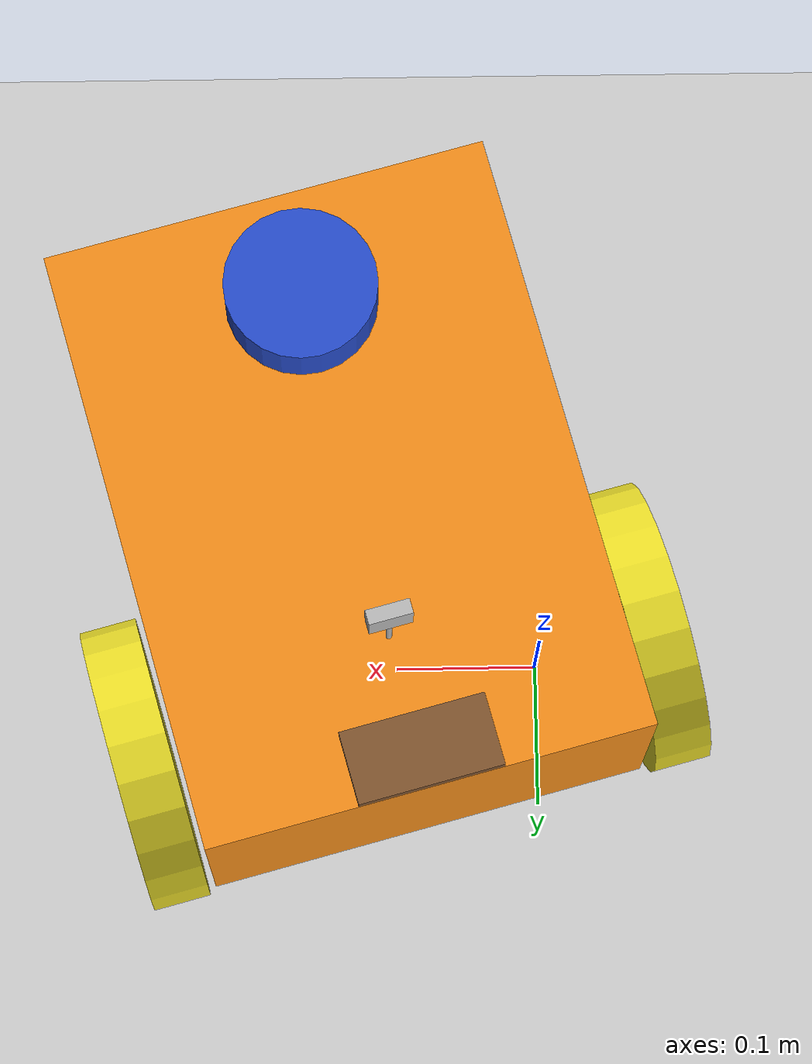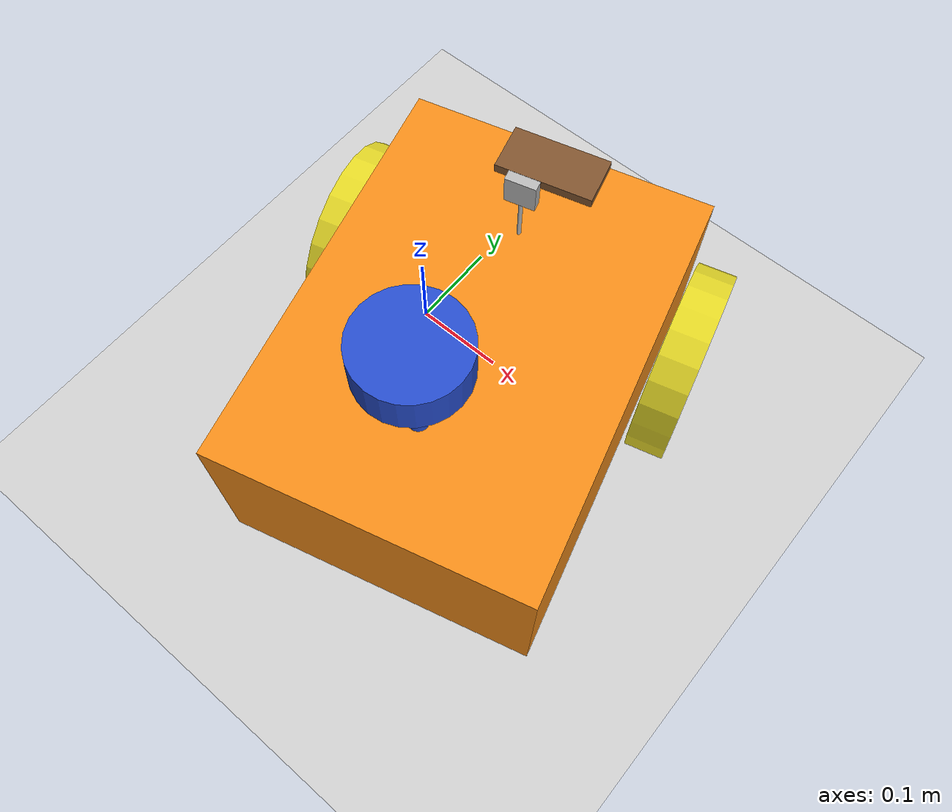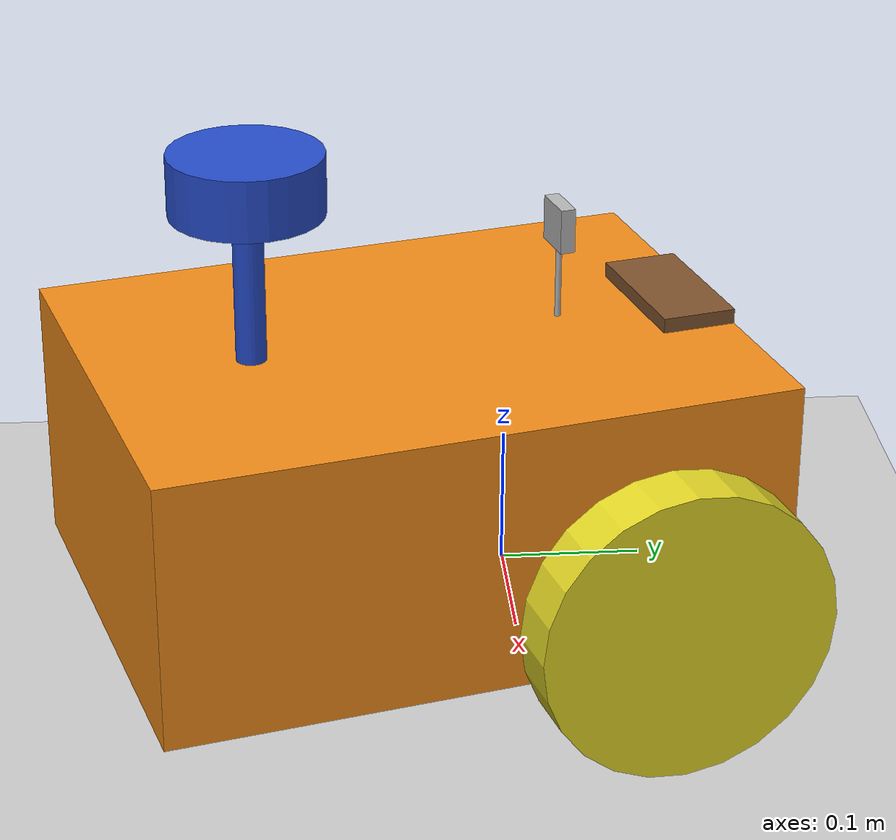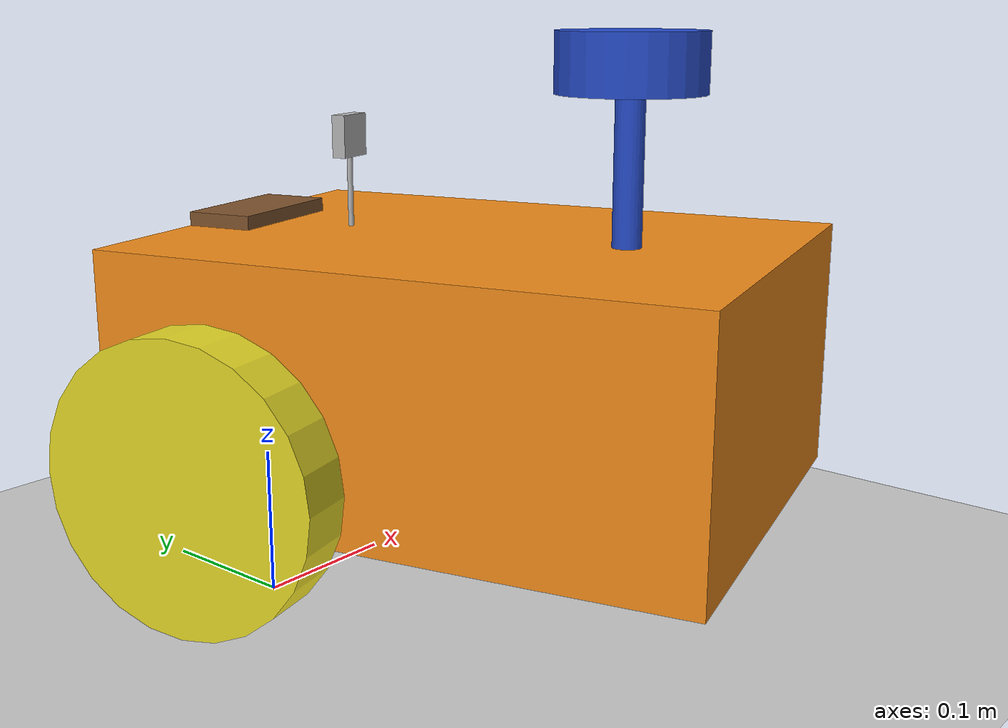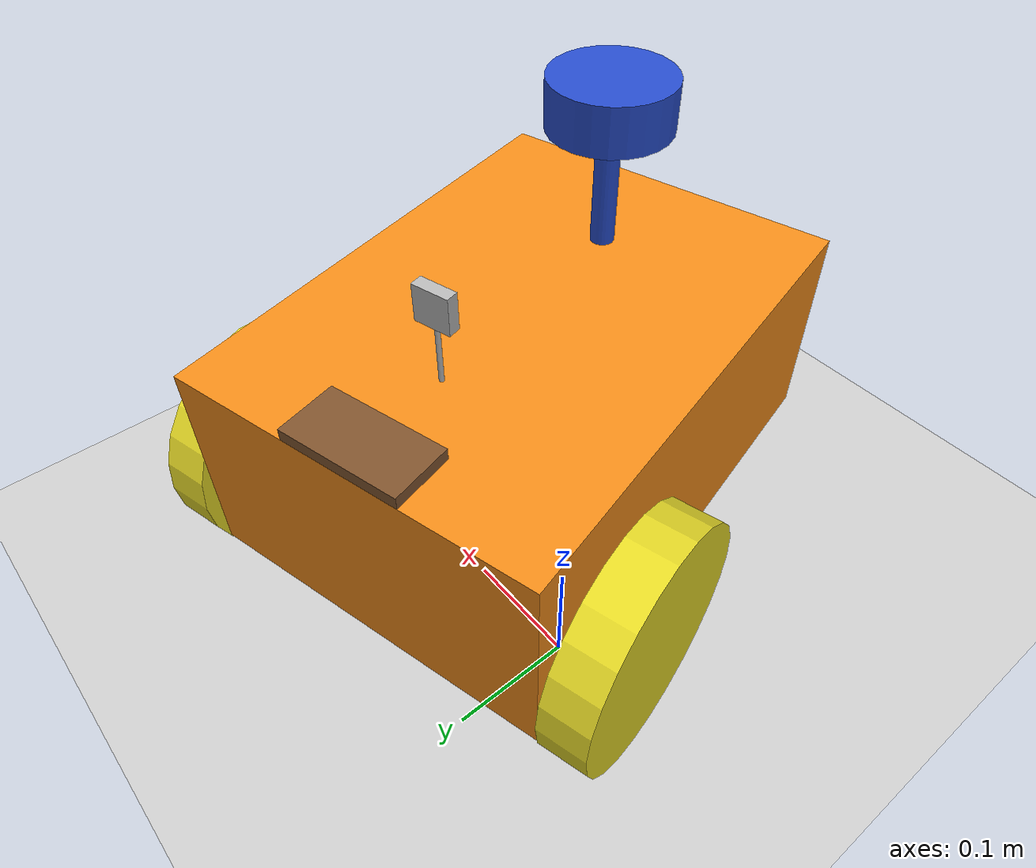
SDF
<sdf version="1.7">
 <world name="default">
  <light name="sun" type="directional">
   <pose>0 0 10 0 -0 0</pose>
   <diffuse>0.8 0.8 0.8 1</diffuse>
   <specular>0.2 0.2 0.2 1</specular>
   <attenuation>
    <range>1000</range>
    <constant>0.9</constant>
    <linear>0.01</linear>
    <quadratic>0.001</quadratic>
   </attenuation>
   <direction>-0.5 0.1 -0.9</direction>
   <spot><inner_angle>0</inner_angle><outer_angle>0</outer_angle><falloff>0</falloff></spot>
  </light>
  <model name="ground_plane">
   <static>1</static>
   <link name="link">
    <collision name="collision">
     <geometry><plane><normal>0 0 1</normal><size>100 100</size></plane></geometry>
     <surface><friction><ode><mu>100</mu><mu2>50</mu2></ode></friction></surface>
    </collision>
    <visual name="visual">
     <cast_shadows>0</cast_shadows>
     <geometry><plane><normal>0 0 1</normal><size>100 100</size></plane></geometry>
     <material>
      <script><uri>file://media/materials/scripts/gazebo.material</uri><name>Gazebo/Grey</name></script>
     </material>
    </visual>
   </link>
  </model>
  <gravity>0 0 -9.8</gravity>
  <magnetic_field>6e-06 2.3e-05 -4.2e-05</magnetic_field>
  <atmosphere type="adiabatic"/>
  <physics type="ode">
   <max_step_size>0.001</max_step_size>
   <real_time_factor>1</real_time_factor>
   <real_time_update_rate>1000</real_time_update_rate>
  </physics>
  <scene><ambient>0.4 0.4 0.4 1</ambient><background>0.7 0.7 0.7 1</background><shadows>1</shadows></scene>
  <audio><device>default</device></audio>
  <spherical_coordinates>
   <surface_model>EARTH_WGS84</surface_model>
   <latitude_deg>0</latitude_deg>
   <longitude_deg>0</longitude_deg>
   <elevation>0</elevation>
   <heading_deg>0</heading_deg>
  </spherical_coordinates>
  <model name="slampibot">
   <link name="base_footprint">
    <inertial>
     <pose>0.005455 0 0.174463 0 -0 0</pose>
     <mass>1.21</mass>
     <inertia>
      <ixx>0.0156346</ixx>
      <ixy>0</ixy>
      <ixz>0.000482955</ixz>
      <iyy>0.0269488</iyy>
      <iyz>0</iyz>
      <izz>0.0276369</izz>
     </inertia>
    </inertial>
    <collision name="base_footprint_fixed_joint_lump__base_link_collision">
     <pose>0 0 0.15 0 -0 0</pose>
     <geometry><box><size>0.42 0.31 0.18</size></box></geometry>
    </collision>
    <collision name="base_footprint_fixed_joint_lump__front_caster_collision_1">
     <pose>-0.14 0 0.06 0 -0 0</pose>
     <geometry><sphere><radius>0.06</radius></sphere></geometry>
     <surface><friction><ode><mu>0.001</mu><mu2>0.001</mu2></ode></friction></surface>
    </collision>
    <collision name="base_footprint_fixed_joint_lump__imu_link_collision_2">
     <pose>0.185 0 0.245 0 -0 0</pose>
     <geometry><box><size>0.05 0.1 0.01</size></box></geometry>
    </collision>
    <collision name="base_footprint_fixed_joint_lump__lidar_link_collision_3">
     <pose>-0.105 0 0.36 0 -0 0</pose>
     <geometry><cylinder><length>0.04</length><radius>0.05</radius></cylinder></geometry>
    </collision>
    <visual name="base_footprint_fixed_joint_lump__base_link_visual">
     <pose>0 0 0.15 0 -0 0</pose>
     <geometry><box><size>0.42 0.31 0.18</size></box></geometry>
     <material>
      <script><name>Gazebo/Orange</name><uri>file://media/materials/scripts/gazebo.material</uri></script>
     </material>
    </visual>
    <visual name="base_footprint_fixed_joint_lump__camera_link_visual_1">
     <pose>0.105 0 0.305 0 -0 0</pose>
     <geometry><box><size>0.01 0.03 0.03</size></box></geometry>
    </visual>
    <visual name="base_footprint_fixed_joint_lump__camera_link_visual_2">
     <pose>0.105 0 0.265 0 -0 0</pose>
     <geometry><cylinder><length>0.05</length><radius>0.002</radius></cylinder></geometry>
    </visual>
    <visual name="base_footprint_fixed_joint_lump__front_caster_visual_3">
     <pose>-0.14 0 0.06 0 -0 0</pose>
     <geometry><sphere><radius>0.06</radius></sphere></geometry>
     <material>
      <script><name>Gazebo/Green</name><uri>file://media/materials/scripts/gazebo.material</uri></script>
     </material>
    </visual>
    <visual name="base_footprint_fixed_joint_lump__imu_link_visual_4">
     <pose>0.185 0 0.245 0 -0 0</pose>
     <geometry><box><size>0.05 0.1 0.01</size></box></geometry>
     <material>
      <script><name>Gazebo/Brown</name><uri>file://media/materials/scripts/gazebo.material</uri></script>
     </material>
    </visual>
    <visual name="base_footprint_fixed_joint_lump__lidar_link_visual_5">
     <pose>-0.105 0 0.36 0 -0 0</pose>
     <geometry><cylinder><length>0.04</length><radius>0.05</radius></cylinder></geometry>
     <material>
      <script><name>Gazebo/Blue</name><uri>file://media/materials/scripts/gazebo.material</uri></script>
     </material>
    </visual>
    <visual name="base_footprint_fixed_joint_lump__lidar_link_visual_6">
     <pose>-0.105 0 0.29 0 -0 0</pose>
     <geometry><cylinder><length>0.1</length><radius>0.01</radius></cylinder></geometry>
     <material>
      <script><name>Gazebo/Blue</name><uri>file://media/materials/scripts/gazebo.material</uri></script>
     </material>
    </visual>
    <sensor name="camera" type="camera">
     <visualize>1</visualize>
     <update_rate>10</update_rate>
     <camera>
      <horizontal_fov>1.089</horizontal_fov>
      <image><format>R8G8B8</format><width>640</width><height>480</height></image>
      <clip><near>0.05</near><far>8</far></clip>
     </camera>
     <plugin name="camera_controller" filename="libgazebo_ros_camera.so">
      <frame_name>camera_optical_link</frame_name>
     </plugin>
     <pose>0.105 0 0.305 0 -0 0</pose>
    </sensor>
    <sensor name="imu_sensor" type="imu">
     <plugin name="imu_plugin" filename="libgazebo_ros_imu_sensor.so">
      <ros><remapping>~/out:=imu</remapping></ros>
      <initial_orientation_as_reference>0</initial_orientation_as_reference>
     </plugin>
     <always_on>1</always_on>
     <update_rate>100</update_rate>
     <visualize>1</visualize>
     <imu>
      <angular_velocity>
       <x>
        <noise type="gaussian">
         <mean>0</mean>
         <stddev>0.0002</stddev>
         <bias_mean>7.5e-06</bias_mean>
         <bias_stddev>8e-07</bias_stddev>
        </noise>
       </x>
       <y>
        <noise type="gaussian">
         <mean>0</mean>
         <stddev>0.0002</stddev>
         <bias_mean>7.5e-06</bias_mean>
         <bias_stddev>8e-07</bias_stddev>
        </noise>
       </y>
       <z>
        <noise type="gaussian">
         <mean>0</mean>
         <stddev>0.0002</stddev>
         <bias_mean>7.5e-06</bias_mean>
         <bias_stddev>8e-07</bias_stddev>
        </noise>
       </z>
      </angular_velocity>
      <linear_acceleration>
       <x>
        <noise type="gaussian">
         <mean>0</mean>
         <stddev>0.017</stddev>
         <bias_mean>0.1</bias_mean>
         <bias_stddev>0.001</bias_stddev>
        </noise>
       </x>
       <y>
        <noise type="gaussian">
         <mean>0</mean>
         <stddev>0.017</stddev>
         <bias_mean>0.1</bias_mean>
         <bias_stddev>0.001</bias_stddev>
        </noise>
       </y>
       <z>
        <noise type="gaussian">
         <mean>0</mean>
         <stddev>0.017</stddev>
         <bias_mean>0.1</bias_mean>
         <bias_stddev>0.001</bias_stddev>
        </noise>
       </z>
      </linear_acceleration>
     </imu>
     <pose>0.185 0 0.245 0 -0 0</pose>
    </sensor>
    <sensor name="lidar" type="ray">
     <visualize>1</visualize>
     <update_rate>10</update_rate>
     <ray>
      <scan>
       <horizontal>
        <samples>360</samples>
        <min_angle>-3.14</min_angle>
        <max_angle>3.14</max_angle>
        <resolution>1</resolution>
       </horizontal>
       <vertical><samples>1</samples><min_angle>0</min_angle><max_angle>0</max_angle></vertical>
      </scan>
      <range><min>0.3</min><max>12</max></range>
     </ray>
     <plugin name="scan" filename="libgazebo_ros_ray_sensor.so">
      <ros><remapping>~/out:=scan</remapping></ros>
      <output_type>sensor_msgs/LaserScan</output_type>
      <frame_name>lidar_link</frame_name>
     </plugin>
     <pose>-0.105 0 0.36 0 -0 0</pose>
    </sensor>
   </link>
   <joint name="wheel_left_joint" type="revolute">
    <pose relative_to="base_footprint">0.12 0.18 0.1 0 -0 0</pose>
    <parent>base_footprint</parent>
    <child>wheel_left_link</child>
    <axis>
     <xyz>0 1 0</xyz>
     <limit><lower>-1e+16</lower><upper>1e+16</upper></limit>
     <dynamics><spring_reference>0</spring_reference><spring_stiffness>0</spring_stiffness></dynamics>
    </axis>
   </joint>
   <link name="wheel_left_link">
    <pose relative_to="wheel_left_joint">0 0 0 0 -0 0</pose>
    <inertial>
     <mass>0.05</mass>
     <inertia>
      <ixx>0.000131667</ixx>
      <ixy>0</ixy>
      <ixz>0</ixz>
      <iyy>0.000131667</iyy>
      <iyz>0</iyz>
      <izz>0.00025</izz>
     </inertia>
    </inertial>
    <collision name="wheel_left_link_collision">
     <pose>0 0 0 1.5708 -0 0</pose>
     <geometry><cylinder><length>0.04</length><radius>0.1</radius></cylinder></geometry>
    </collision>
    <visual name="wheel_left_link_visual">
     <pose>0 0 0 1.5708 -0 0</pose>
     <geometry><cylinder><length>0.04</length><radius>0.1</radius></cylinder></geometry>
     <material>
      <script><name>Gazebo/Yellow</name><uri>file://media/materials/scripts/gazebo.material</uri></script>
     </material>
    </visual>
   </link>
   <joint name="wheel_right_joint" type="revolute">
    <pose relative_to="base_footprint">0.12 -0.18 0.1 0 -0 0</pose>
    <parent>base_footprint</parent>
    <child>wheel_right_link</child>
    <axis>
     <xyz>0 1 0</xyz>
     <limit><lower>-1e+16</lower><upper>1e+16</upper></limit>
     <dynamics><spring_reference>0</spring_reference><spring_stiffness>0</spring_stiffness></dynamics>
    </axis>
   </joint>
   <link name="wheel_right_link">
    <pose relative_to="wheel_right_joint">0 0 0 0 -0 0</pose>
    <inertial>
     <mass>0.05</mass>
     <inertia>
      <ixx>0.000131667</ixx>
      <ixy>0</ixy>
      <ixz>0</ixz>
      <iyy>0.000131667</iyy>
      <iyz>0</iyz>
      <izz>0.00025</izz>
     </inertia>
    </inertial>
    <collision name="wheel_right_link_collision">
     <pose>0 0 0 1.5708 -0 0</pose>
     <geometry><cylinder><length>0.04</length><radius>0.1</radius></cylinder></geometry>
    </collision>
    <visual name="wheel_right_link_visual">
     <pose>0 0 0 1.5708 -0 0</pose>
     <geometry><cylinder><length>0.04</length><radius>0.1</radius></cylinder></geometry>
     <material>
      <script><name>Gazebo/Yellow</name><uri>file://media/materials/scripts/gazebo.material</uri></script>
     </material>
    </visual>
   </link>
   <plugin name="spb_gazebo" filename="libgazebo_ros_diff_drive.so">
    <ros><remapping>~/out:=odom</remapping></ros>
    <update_rate>30</update_rate>
    <left_joint>wheel_left_joint</left_joint>
    <right_joint>wheel_right_joint</right_joint>
    <wheel_separation>0.52</wheel_separation>
    <wheel_diameter>0.28</wheel_diameter>
    <max_wheel_torque>200</max_wheel_torque>
    <max_wheel_acceleration>10.0</max_wheel_acceleration>
    <command_topic>cmd_vel</command_topic>
    <odometry_topic>odom</odometry_topic>
    <odometry_frame>odom</odometry_frame>
    <robot_base_frame>base_footprint</robot_base_frame>
    <publish_odom>1</publish_odom>
    <publish_odom_tf>1</publish_odom_tf>
    <publish_wheel_tf>0</publish_wheel_tf>
   </plugin>
   <static>0</static>
   <plugin name="slampibot_joint_state" filename="libgazebo_ros_joint_state_publisher.so">
    <ros><remapping>~/out:=joint_states</remapping></ros>
    <update_rate>30</update_rate>
    <joint_name>wheel_left_joint</joint_name>
    <joint_name>wheel_right_joint</joint_name>
   </plugin>
   <pose>0.133769 -0.078304 0 0 -1e-06 1.8317</pose>
  </model>
 </world>
</sdf>
